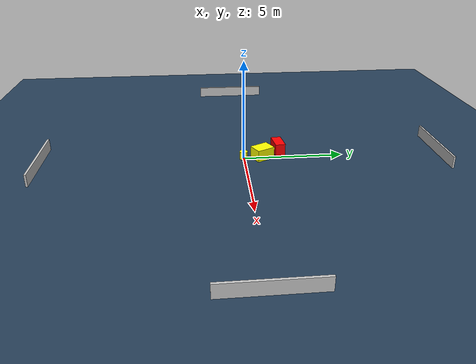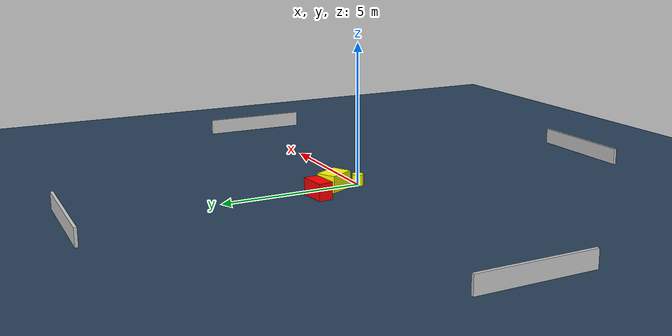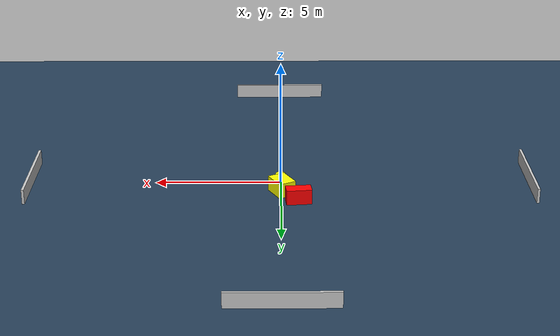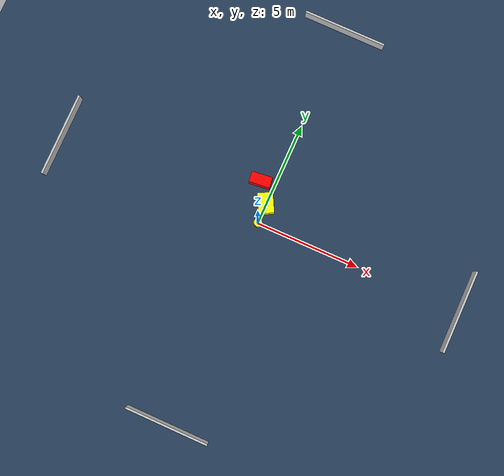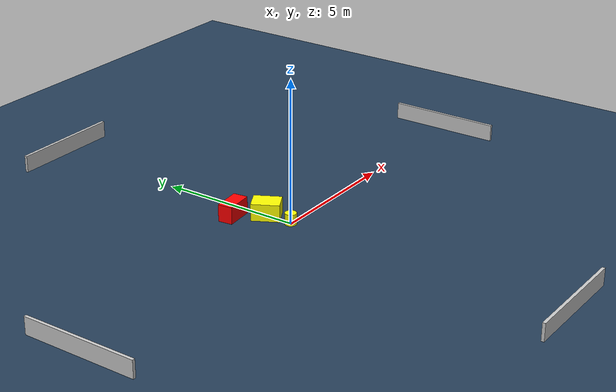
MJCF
<?xml version="1.0" ?>
<mujoco model="generated_environment">
  <option timestep="0.01" integrator="RK4" cone="elliptic"/>
  <default>
    <geom density="1"/>
  </default>
  <asset>
    <texture builtin="gradient" height="3072" name="skybox" rgb1="0.3 0.5 0.7" rgb2="0 0 0" type="skybox" width="512"/>
    <texture builtin="checker" height="300" name="groundplane" rgb1="0.2 0.3 0.4" rgb2="0.1 0.2 0.3" type="2d" width="300"/>
    <material name="groundplane" reflectance="0.2" texrepeat="5 5" texture="groundplane"/>
  </asset>
  <worldbody>
    <light dir="0 0 -1" directional="true" pos="0 0 1.5"/>
    <geom condim="3" friction="0.5 0.005 0.001" material="groundplane" name="floor" pos="0 0 0" size="0 0 0.05" type="plane"/>
    <body name="walls">
      <geom name="wall_1" condim="4" pos="-10.0 0.0 0.3" rgba="0.800000011920929 0.800000011920929 0.800000011920929 1.0" size="0.05 2.0 0.3" type="box"/>
      <geom name="wall_2" condim="4" pos="10.0 0.0 0.3" rgba="0.800000011920929 0.800000011920929 0.800000011920929 1.0" size="0.05 2.0 0.3" type="box"/>
      <geom name="wall_3" condim="4" pos="0.0 -10.0 0.3" rgba="0.800000011920929 0.800000011920929 0.800000011920929 1.0" size="2.0 0.05 0.3" type="box"/>
      <geom name="wall_4" condim="4" pos="0.0 10.0 0.3" rgba="0.800000011920929 0.800000011920929 0.800000011920929 1.0" size="2.0 0.05 0.3" type="box"/>
    </body>
    <body name="robot">
      <joint name="joint_x" type="slide" pos="0 0 0" axis="1 0 0"/>
      <joint name="joint_y" type="slide" pos="0 0 0" axis="0 1 0"/>
      <geom name="robot" type="cylinder" pos="0.0 0.0 0.2" size="0.2 0.2 0.0" mass="5.0" friction="1.0 0.005 0.0001" condim="4" rgba="1.0 1.0 0.0 1.0"/>
    </body>
    <body name="obstacle_1_movable">
      <geom name="obstacle_1_movable" condim="4" pos="-0.04021543555323471 0.9508971914887425 0.3" euler="0 0 208.01081959812709" friction="0.0 0.005 0.001" rgba="1.0 1.0 0.0 1.0" size="0.3613089460623782 0.47974116844332465 0.3" type="box" mass="0.1"/>
      <joint type="free"/>
    </body>
    <body name="obstacle_2_static">
      <geom name="obstacle_2_static" condim="4" pos="-0.6895138039740709 1.8414541977813614 0.3" euler="0 0 6.088424369172678" friction="0.0 0.005 0.001" rgba="1.0 0.0 0.0 1.0" size="0.49983162250514424 0.25467961676195355 0.3" type="box"/>
    </body>
  </worldbody>
  <actuator>
    <motor name="actuator_x" joint="joint_x" gear="1" ctrlrange="-1 1"/>
    <motor name="actuator_y" joint="joint_y" gear="1" ctrlrange="-1 1"/>
  </actuator>
</mujoco>
